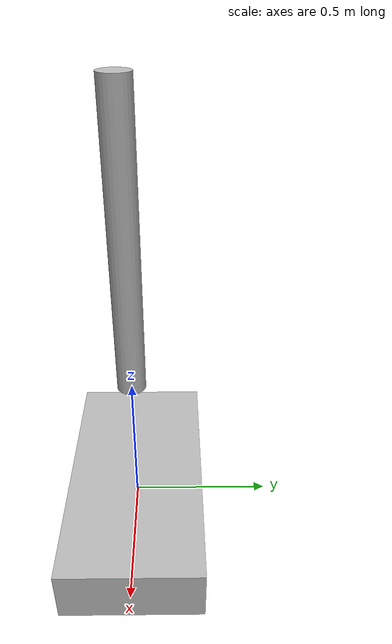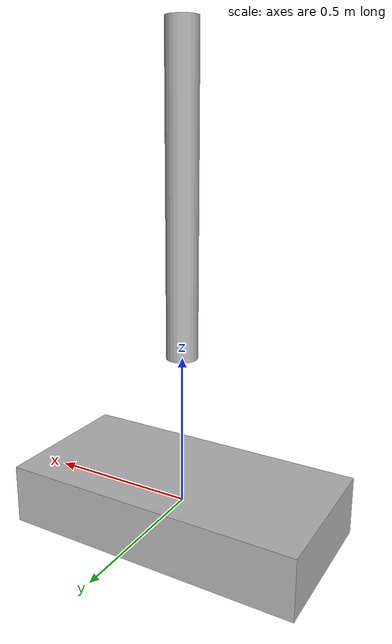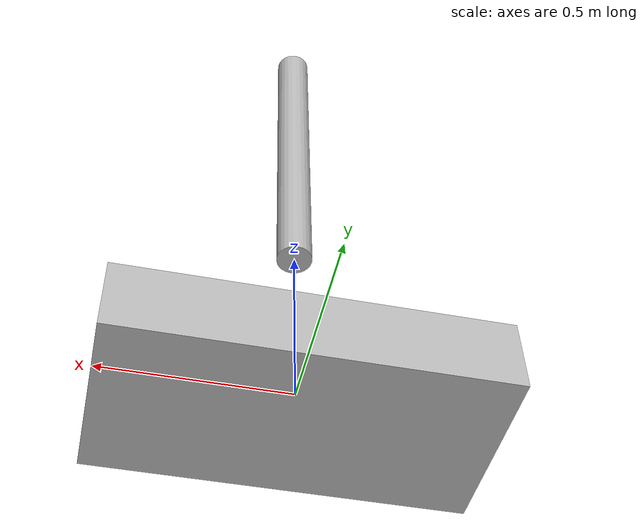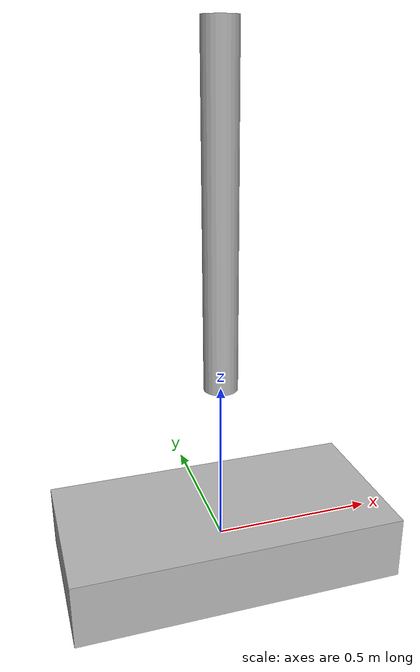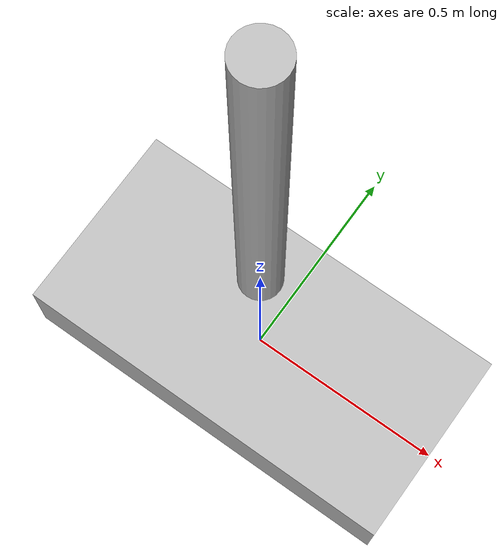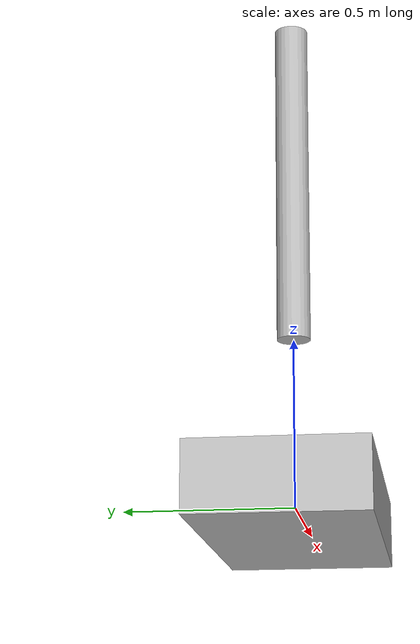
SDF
<sdf version="1.8">
  <model name="inverted_pendulum">
    <link name="cart">
      <pose>0 0 0 0 0 0</pose>
      <inertial>
        <mass>2</mass>
        <inertia>
          <ixx>0.1</ixx>
          <iyy>0.1</iyy>
          <izz>0.1</izz>
        </inertia>
      </inertial>
      <visual name="visual_cart">
        <geometry>
          <box>
            <size>1 0.5 0.2</size>
          </box>
        </geometry>
      </visual>
      <collision name="collision_cart">
        <geometry>
          <box>
            <size>1 0.5 0.2</size>
          </box>
        </geometry>
      </collision>
    </link>

    <link name="pendulum">
      <pose>0 0 1 0 0 0</pose>
      <inertial>
        <mass>1</mass>
        <inertia>
          <ixx>0.05</ixx>
          <iyy>0.05</iyy>
          <izz>0.05</izz>
        </inertia>
      </inertial>
      <visual name="visual_pendulum">
        <geometry>
          <cylinder>
            <radius>0.05</radius>
            <length>1</length>
          </cylinder>
        </geometry>
      </visual>
      <collision name="collision_pendulum">
        <geometry>
          <cylinder>
            <radius>0.05</radius>
            <length>1</length>
          </cylinder>
        </geometry>
      </collision>
    </link>

    <joint name="pendulum_joint" type="revolute">
      <parent>cart</parent>
      <child>pendulum</child>
      <axis>
        <xyz>0 1 0</xyz>
        <limit>
          <lower>-3.14</lower>
          <upper>3.14</upper>
        </limit>
      </axis>
    </joint>

    <plugin filename="your_control_plugin" name="your::control::Plugin"/>
  </model>
</sdf>
